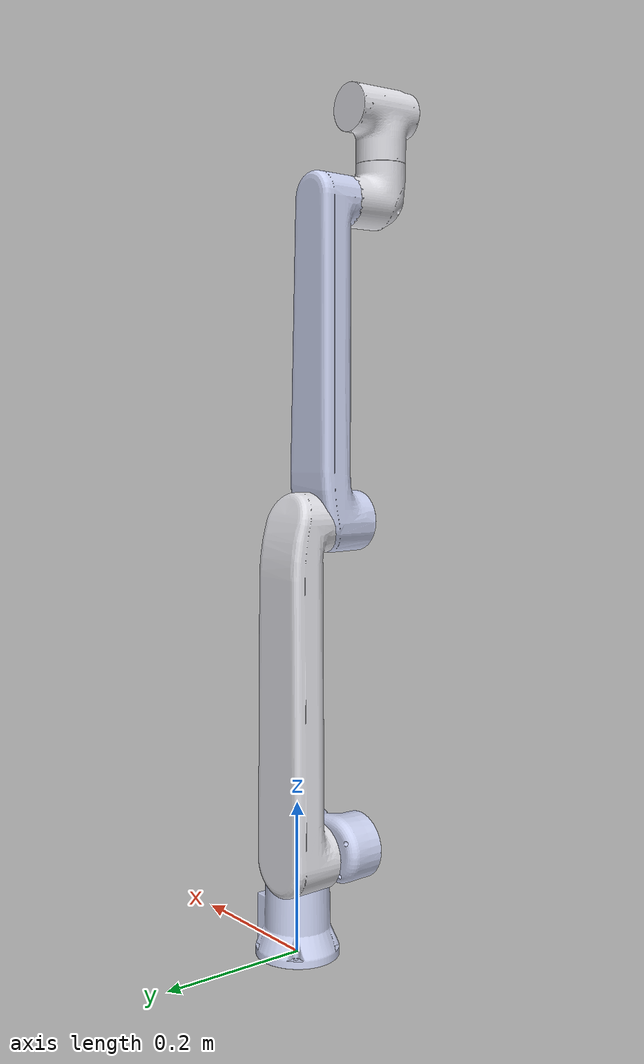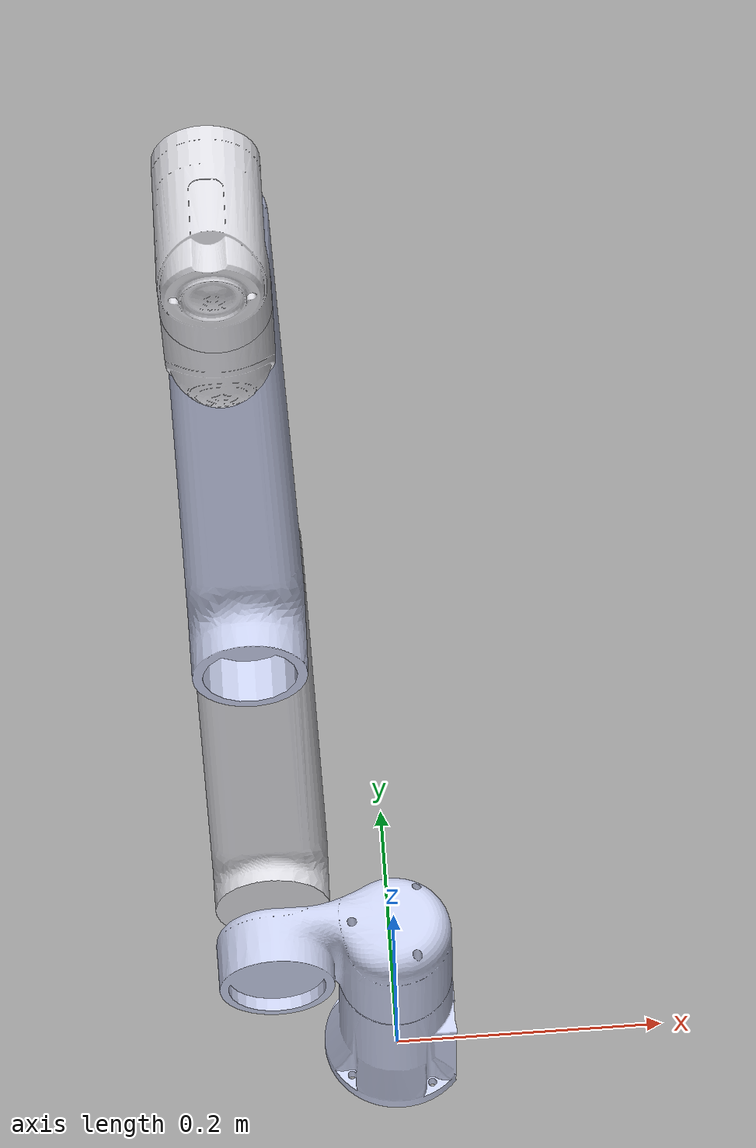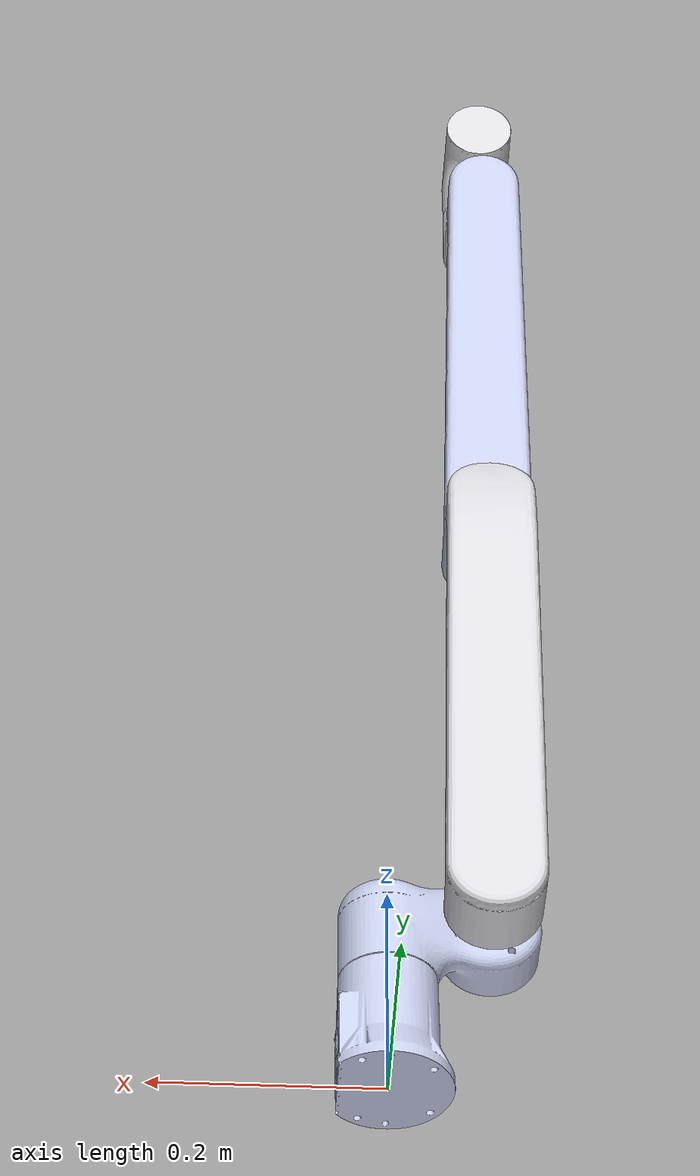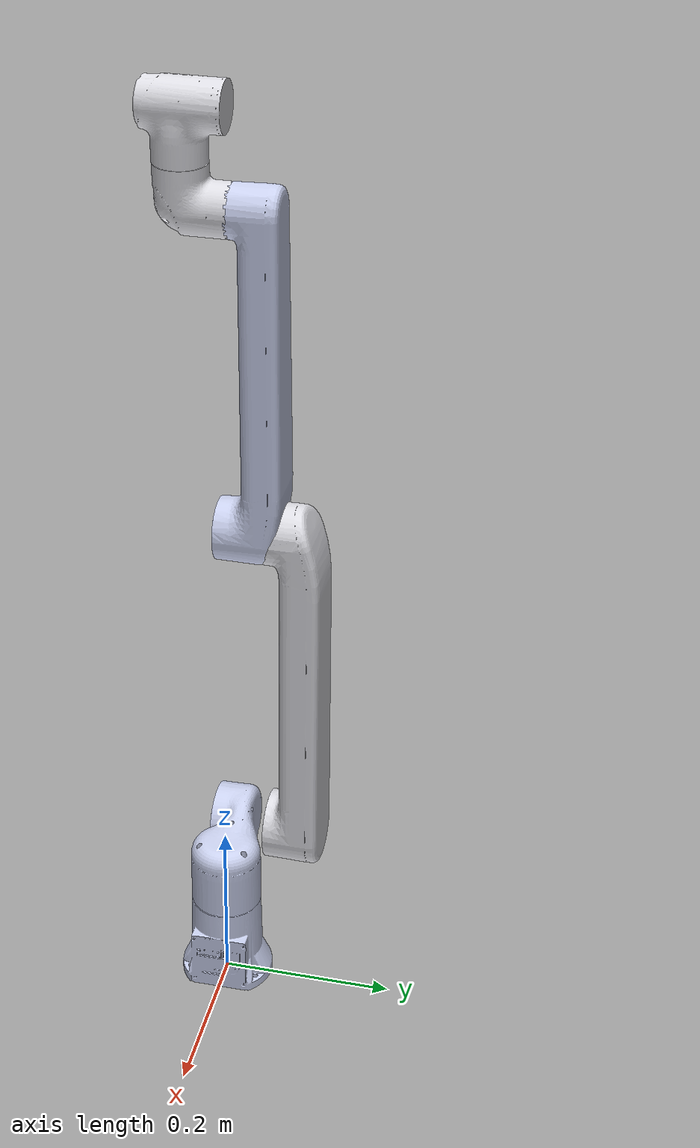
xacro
<?xml version="1.0" encoding="utf-8"?>
<robot  name="rm_eco63_description" xmlns:xacro="http://www.ros.org/wiki/xacro">
    <!-- link6_type -->
    <xacro:arg name="link6_type" default="link6" />
    <!-- arg->property -->
    <xacro:property name="link6_type" value="$(arg link6_type)" />
    <link
    name="base_link">
    <inertial>
      <origin
        xyz="-0.0819699961303711 -0.0464753726622393 0.526722271495911"
        rpy="0 0 0" />
      <mass
        value="8.97974481667473" />
      <inertia
        ixx="0.862297666639592"
        ixy="-0.00170110773340804"
        ixz="0.0134260863948258"
        iyy="0.853404080505364"
        iyz="-0.0335323790979435"
        izz="0.021909948868005" />
    </inertial>
    <visual>
      <origin
        xyz="0 0 0"
        rpy="0 0 0" />
      <geometry>
        <mesh
          filename="package://rm_description/meshes/rm_eco63_arm/base_link.STL" />
      </geometry>
      <material
        name="">
        <color
          rgba="0.792156862745098 0.819607843137255 0.933333333333333 1" />
      </material>
    </visual>
    <collision>
      <origin
        xyz="0 0 0"
        rpy="0 0 0" />
      <geometry>
        <mesh
          filename="package://rm_description/meshes/rm_eco63_arm/base_link.STL" />
      </geometry>
    </collision>
  </link>
  <link
    name="link1">
    <inertial>
      <origin
        xyz="-0.0309493055609114 -0.0012728567226139 -0.00524336672353307"
        rpy="0 0 0" />
      <mass
        value="0.656374618338142" />
      <inertia
        ixx="0.000538922068295209"
        ixy="-6.49558484347273E-05"
        ixz="0.000104084843141859"
        iyy="0.00162201405585815"
        iyz="6.13990176963193E-06"
        izz="0.00151559483136641" />
    </inertial>
    <visual>
      <origin
        xyz="0 0 0"
        rpy="0 0 0" />
      <geometry>
        <mesh
          filename="package://rm_description/meshes/rm_eco63_arm/Link1.STL" />
      </geometry>
      <material
        name="">
        <color
          rgba="0.792156862745098 0.819607843137255 0.933333333333333 1" />
      </material>
    </visual>
    <collision>
      <origin
        xyz="0 0 0"
        rpy="0 0 0" />
      <geometry>
        <mesh
          filename="package://rm_description/meshes/rm_eco63_arm/Link1.STL" />
      </geometry>
    </collision>
  </link>
  <joint
    name="joint1"
    type="revolute">
    <origin
      xyz="0 0 0.1625"
      rpy="0 0 0" />
    <parent
      link="base_link" />
    <child
      link="link1" />
    <axis
      xyz="0 0 1" />
    <limit
      lower="-3.105"
      upper="3.105"
      effort="60"
      velocity="3.14" />
  </joint>
  <link
    name="link2">
    <inertial>
      <origin
        xyz="0.194682247033962 -1.86346038127949E-07 0.0708742731440949"
        rpy="0 0 0" />
      <mass
        value="5.26262523683375" />
      <inertia
        ixx="0.00404170032131906"
        ixy="-5.65174393111021E-07"
        ixz="0.00121807022294723"
        iyy="0.109727764384232"
        iyz="-2.72124756899763E-09"
        izz="0.110681578185881" />
    </inertial>
    <visual>
      <origin
        xyz="0 0 0"
        rpy="0 0 0" />
      <geometry>
        <mesh
          filename="package://rm_description/meshes/rm_eco63_arm/Link2.STL" />
      </geometry>
      <material
        name="">
        <color
          rgba="0.866666666666667 0.866666666666667 0.890196078431372 1" />
      </material>
    </visual>
    <collision>
      <origin
        xyz="0 0 0"
        rpy="0 0 0" />
      <geometry>
        <mesh
          filename="package://rm_description/meshes/rm_eco63_arm/Link2.STL" />
      </geometry>
    </collision>
  </link>
  <joint
    name="joint2"
    type="revolute">
    <origin
      xyz="-0.086 0 0"
      rpy="1.5708 -1.5708 0" />
    <parent
      link="link1" />
    <child
      link="link2" />
    <axis
      xyz="0 0 -1" />
    <limit
      lower="-3.105"
      upper="2.355"
      effort="60"
      velocity="3.14" />
  </joint>
  <link
    name="link3">
    <inertial>
      <origin
        xyz="0.179310475039839 1.86928912626616E-09 0.0308638630867258"
        rpy="0 0 0" />
      <mass
        value="1.3509329667983" />
      <inertia
        ixx="0.000796925531981305"
        ixy="-2.89740446981148E-08"
        ixz="-0.000607432295339128"
        iyy="0.0219803140031169"
        iyz="1.84171394643915E-08"
        izz="0.022157190260175" />
    </inertial>
    <visual>
      <origin
        xyz="0 0 0"
        rpy="0 0 0" />
      <geometry>
        <mesh
          filename="package://rm_description/meshes/rm_eco63_arm/Link3.STL" />
      </geometry>
      <material
        name="">
        <color
          rgba="0.792156862745098 0.819607843137255 0.933333333333333 1" />
      </material>
    </visual>
    <collision>
      <origin
        xyz="0 0 0"
        rpy="0 0 0" />
      <geometry>
        <mesh
          filename="package://rm_description/meshes/rm_eco63_arm/Link3.STL" />
      </geometry>
    </collision>
  </link>
  <joint
    name="joint3"
    type="revolute">
    <origin
      xyz="0.41 0 0"
      rpy="3.1416 -0.0087266 0" />
    <parent
      link="link2" />
    <child
      link="link3" />
    <axis
      xyz=" 0 0 1" />
    <limit
      lower="-2.93"
      upper="2.756"
      effort="30"
      velocity="3.14" />
  </joint>
  <link
    name="link4">
    <inertial>
      <origin
        xyz="1.18737948139047E-06 -0.00995387687025817 0.0129236518197595"
        rpy="0 0 0" />
      <mass
        value="0.733001235394853" />
      <inertia
        ixx="0.000641256799113762"
        ixy="7.16323347889126E-09"
        ixz="-6.76890724051393E-09"
        iyy="0.000512473473605366"
        iyz="-0.000109077537111131"
        izz="0.000460316607732565" />
    </inertial>
    <visual>
      <origin
        xyz="0 0 0"
        rpy="0 0 0" />
      <geometry>
        <mesh
          filename="package://rm_description/meshes/rm_eco63_arm/Link4.STL" />
      </geometry>
      <material
        name="">
        <color
          rgba="0.866666666666667 0.866666666666667 0.890196078431372 1" />
      </material>
    </visual>
    <collision>
      <origin
        xyz="0 0 0"
        rpy="0 0 0" />
      <geometry>
        <mesh
          filename="package://rm_description/meshes/rm_eco63_arm/Link4.STL" />
      </geometry>
    </collision>
  </link>
  <joint
    name="joint4"
    type="revolute">
    <origin
      xyz="0.38049 0 -0.054981"
      rpy="-0.0087266 0 1.5708" />
    <parent
      link="link3" />
    <child
      link="link4" />
    <axis
      xyz="0 0 1" />
    <limit
      lower="-3.105"
      upper="3.105"
      effort="10"
      velocity="3.14" />
  </joint>
  <link
    name="link5">
    <inertial>
      <origin
        xyz="1.10373835336686E-06 0.00366306859871773 -0.0136222948606266"
        rpy="0 0 0" />
      <mass
        value="0.911747774463918" />
      <inertia
        ixx="0.000797250089831515"
        ixy="-3.0783066224908E-08"
        ixz="-1.86945083800088E-09"
        iyy="0.000572176795709541"
        iyz="-0.000145598908387624"
        izz="0.000625883738000052" />
    </inertial>
    <visual>
      <origin
        xyz="0 0 0"
        rpy="0 0 0" />
      <geometry>
        <mesh
          filename="package://rm_description/meshes/rm_eco63_arm/Link5.STL" />
      </geometry>
      <material
        name="">
        <color
          rgba="0.866666666666667 0.866666666666667 0.890196078431372 1" />
      </material>
    </visual>
    <collision>
      <origin
        xyz="0 0 0"
        rpy="0 0 0" />
      <geometry>
        <mesh
          filename="package://rm_description/meshes/rm_eco63_arm/Link5.STL" />
      </geometry>
    </collision>
  </link>
  <joint
    name="joint5"
    type="revolute">
    <origin
      xyz="0 -0.11 -0.0006"
      rpy="1.5708 0 0" />
    <parent
      link="link4" />
    <child
      link="link5" />
    <axis
      xyz="0 0 1" />
    <limit
      lower="-3.105"
      upper="3.105"
      effort="10"
      velocity="3.14" />
  </joint>
    <xacro:if value="${ link6_type =='Link6' }">
        <link
    name="link6">
    <inertial>
      <origin
        xyz="0.000922882083248047 -9.40199566012989E-05 -0.0127047090822767"
        rpy="0 0 0" />
      <mass
        value="0.065035417997418" />
      <inertia
        ixx="2.11425102567822E-05"
        ixy="-2.28752901090794E-08"
        ixz="-2.56006744332993E-08"
        iyy="1.81097258369991E-05"
        iyz="-1.0175060606431E-08"
        izz="3.19000225583591E-05" />
    </inertial>
    <visual>
      <origin
        xyz="0 0 0"
        rpy="0 0 0" />
      <geometry>
        <mesh
          filename="package://rm_description/meshes/rm_eco63_arm/Link6.STL" />
      </geometry>
      <material
        name="">
        <color
          rgba="0.752941176470588 0.752941176470588 0.752941176470588 1" />
      </material>
    </visual>
    <collision>
      <origin
        xyz="0 0 0"
        rpy="0 0 0" />
      <geometry>
        <mesh
          filename="package://rm_description/meshes/rm_eco63_arm/Link6.STL" />
      </geometry>
    </collision>
  </link>
  <joint
    name="joint6"
    type="revolute">
    <origin
      xyz="-0.00010641 0.0797 -0.00010731"
      rpy="-1.5708 0 0" />
    <parent
      link="link5" />
    <child
      link="link6" />
    <axis
      xyz="0 0 1" />
    <limit
      lower="-6.28"
      upper="6.28"
      effort="10"
      velocity="3.14" />
  </joint>
    </xacro:if>
    <xacro:if value="${ link6_type =='Link6_6fb' }">
      <link
    name="link6">
    <inertial>
      <origin
        xyz="0.000502798417250983 1.40039216558474E-05 -0.0166588848846901"
        rpy="0 0 0" />
      <mass
        value="0.151764173288042" />
      <inertia
        ixx="5.92991887697562E-05"
        ixy="-3.55096210035366E-08"
        ixz="9.38773298614362E-07"
        iyy="6.14480379976492E-05"
        iyz="-2.92670703712805E-08"
        izz="7.77928386927577E-05" />
    </inertial>
    <visual>
      <origin
        xyz="0 0 0"
        rpy="0 0 0" />
      <geometry>
        <mesh
          filename="package://rm_description/meshes/rm_eco63_arm/Link6_6fb.STL" />
      </geometry>
      <material
        name="">
        <color
          rgba="0.866666666666667 0.866666666666667 0.890196078431372 1" />
      </material>
    </visual>
    <collision>
      <origin
        xyz="0 0 0"
        rpy="0 0 0" />
      <geometry>
        <mesh
          filename="package://rm_description/meshes/rm_eco63_arm/Link6_6fb.STL" />
      </geometry>
    </collision>
  </link>
  <joint
    name="joint6"
    type="revolute">
    <origin
      xyz="0 0.0967 0"
      rpy="-1.5708 0 0" />
    <parent
      link="link5" />
    <child
      link="link6" />
    <axis
      xyz="0 0 1" />
    <limit
      lower="-6.28"
      upper="6.28"
      effort="10"
      velocity="3.14" />
  </joint>
    </xacro:if>
</robot>
